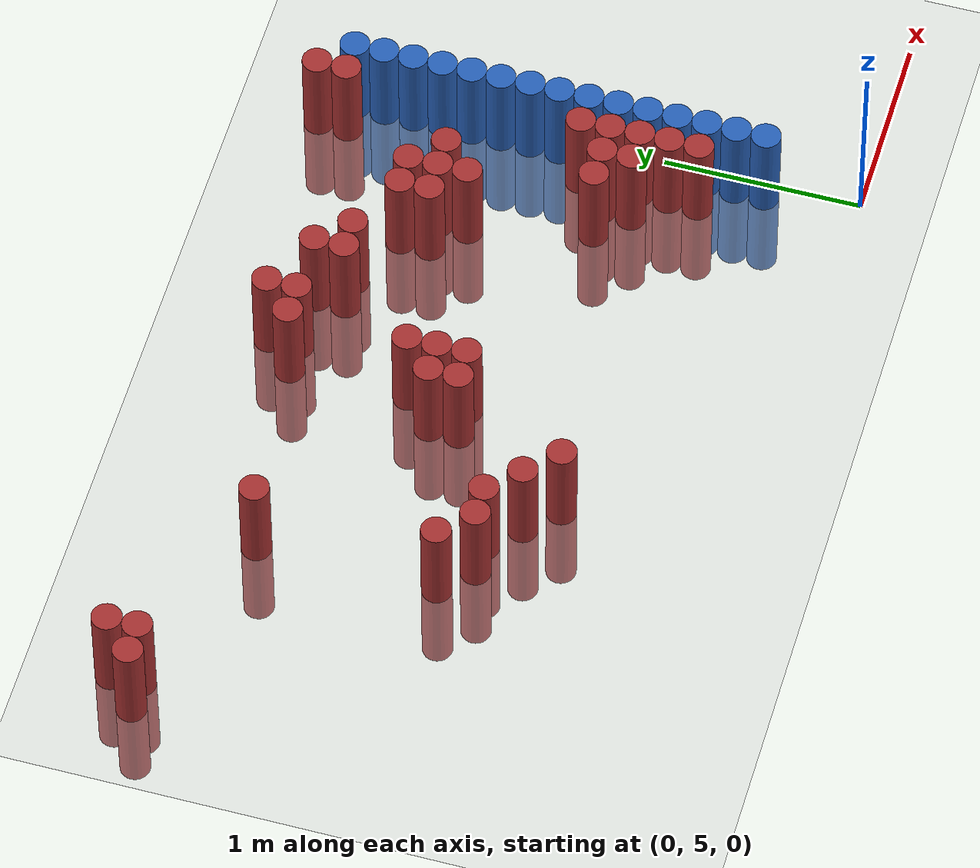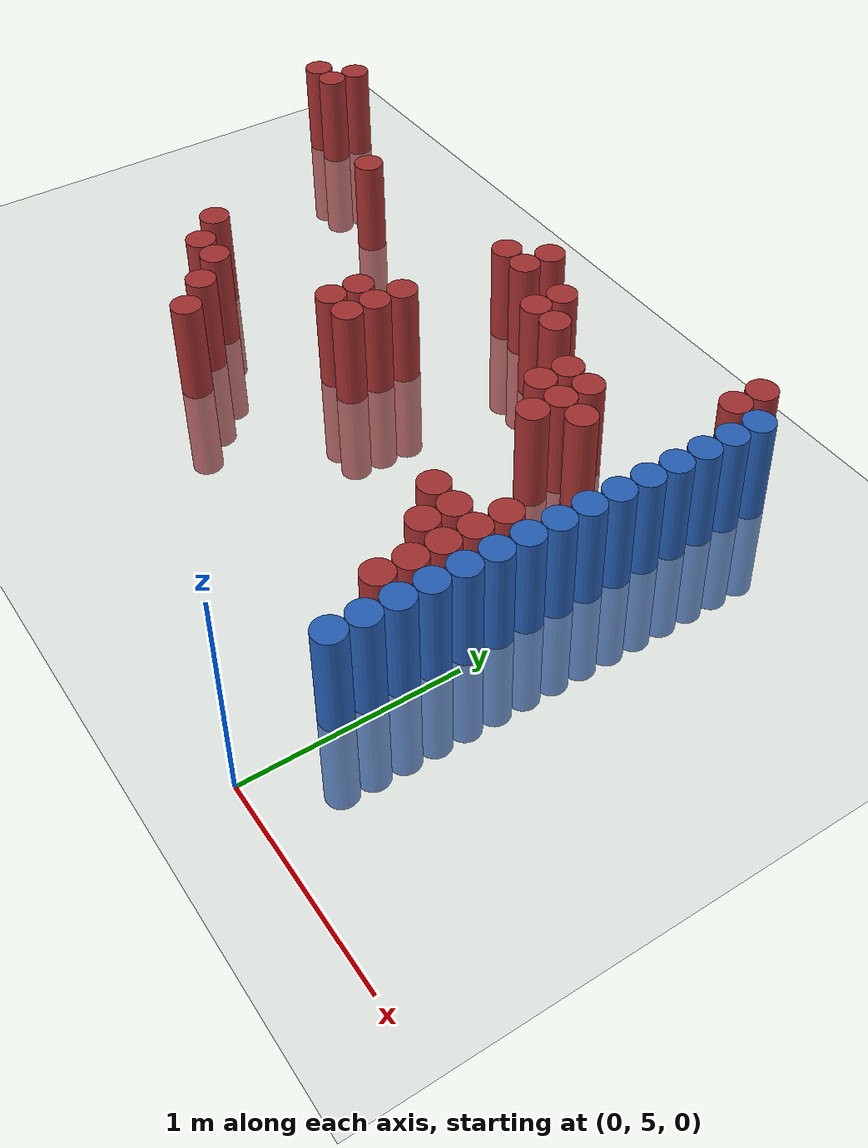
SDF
<sdf version="1.6">
 <world name="default">
  <model name="ground_plane">
   <static>1</static>
   <link name="link">
    <collision name="collision">
     <geometry><plane><normal>0 0 1</normal><size>100 100</size></plane></geometry>
     <surface><friction><ode><mu>100</mu><mu2>50</mu2></ode></friction></surface>
    </collision>
    <visual name="visual">
     <cast_shadows>0</cast_shadows>
     <geometry><plane><normal>0 0 1</normal><size>100 100</size></plane></geometry>
     <material>
      <script><uri>file://media/materials/scripts/gazebo.material</uri><name>Gazebo/Grey</name></script>
     </material>
    </visual>
   </link>
  </model>
  <model name="unit_cylinder_152">
   <static>1</static>
   <pose>-3.825000 7.575000 0.000000 0.000000 0.000000 0.000000</pose>
   <link name="link">
    <inertial>
     <mass>1</mass>
     <inertia><ixx>0.145833</ixx><ixy>0</ixy><ixz>0</ixz><iyy>0.145833</iyy><iyz>0</iyz><izz>0.125</izz></inertia>
    </inertial>
    <collision name="collision">
     <geometry><cylinder><radius>0.075000</radius><length>1</length></cylinder></geometry>
    </collision>
    <visual name="visual">
     <geometry><cylinder><radius>0.075000</radius><length>1</length></cylinder></geometry>
     <material>
      <ambient>0.648000 0.192000 0.192000 1</ambient>
      <diffuse>0.648000 0.192000 0.192000 1</diffuse>
     </material>
     <material>
      <script><name>Gazebo/Grey</name><uri>file://media/materials/scripts/gazebo.material</uri></script>
     </material>
    </visual>
   </link>
  </model>
  <model name="unit_cylinder_153">
   <static>1</static>
   <pose>-3.675000 7.575000 0.000000 0.000000 0.000000 0.000000</pose>
   <link name="link">
    <inertial>
     <mass>1</mass>
     <inertia><ixx>0.145833</ixx><ixy>0</ixy><ixz>0</ixz><iyy>0.145833</iyy><iyz>0</iyz><izz>0.125</izz></inertia>
    </inertial>
    <collision name="collision">
     <geometry><cylinder><radius>0.075000</radius><length>1</length></cylinder></geometry>
    </collision>
    <visual name="visual">
     <geometry><cylinder><radius>0.075000</radius><length>1</length></cylinder></geometry>
     <material>
      <ambient>0.648000 0.192000 0.192000 1</ambient>
      <diffuse>0.648000 0.192000 0.192000 1</diffuse>
     </material>
     <material>
      <script><name>Gazebo/Grey</name><uri>file://media/materials/scripts/gazebo.material</uri></script>
     </material>
    </visual>
   </link>
  </model>
  <model name="unit_cylinder_154">
   <static>1</static>
   <pose>-3.675000 7.725000 0.000000 0.000000 0.000000 0.000000</pose>
   <link name="link">
    <inertial>
     <mass>1</mass>
     <inertia><ixx>0.145833</ixx><ixy>0</ixy><ixz>0</ixz><iyy>0.145833</iyy><iyz>0</iyz><izz>0.125</izz></inertia>
    </inertial>
    <collision name="collision">
     <geometry><cylinder><radius>0.075000</radius><length>1</length></cylinder></geometry>
    </collision>
    <visual name="visual">
     <geometry><cylinder><radius>0.075000</radius><length>1</length></cylinder></geometry>
     <material>
      <ambient>0.648000 0.192000 0.192000 1</ambient>
      <diffuse>0.648000 0.192000 0.192000 1</diffuse>
     </material>
     <material>
      <script><name>Gazebo/Grey</name><uri>file://media/materials/scripts/gazebo.material</uri></script>
     </material>
    </visual>
   </link>
  </model>
  <model name="unit_cylinder_157">
   <static>1</static>
   <pose>-2.775000 6.375000 0.000000 0.000000 0.000000 0.000000</pose>
   <link name="link">
    <inertial>
     <mass>1</mass>
     <inertia><ixx>0.145833</ixx><ixy>0</ixy><ixz>0</ixz><iyy>0.145833</iyy><iyz>0</iyz><izz>0.125</izz></inertia>
    </inertial>
    <collision name="collision">
     <geometry><cylinder><radius>0.075000</radius><length>1</length></cylinder></geometry>
    </collision>
    <visual name="visual">
     <geometry><cylinder><radius>0.075000</radius><length>1</length></cylinder></geometry>
     <material>
      <ambient>0.648000 0.192000 0.192000 1</ambient>
      <diffuse>0.648000 0.192000 0.192000 1</diffuse>
     </material>
     <material>
      <script><name>Gazebo/Grey</name><uri>file://media/materials/scripts/gazebo.material</uri></script>
     </material>
    </visual>
   </link>
  </model>
  <model name="unit_cylinder_158">
   <static>1</static>
   <pose>-2.775000 7.275000 0.000000 0.000000 0.000000 0.000000</pose>
   <link name="link">
    <inertial>
     <mass>1</mass>
     <inertia><ixx>0.145833</ixx><ixy>0</ixy><ixz>0</ixz><iyy>0.145833</iyy><iyz>0</iyz><izz>0.125</izz></inertia>
    </inertial>
    <collision name="collision">
     <geometry><cylinder><radius>0.075000</radius><length>1</length></cylinder></geometry>
    </collision>
    <visual name="visual">
     <geometry><cylinder><radius>0.075000</radius><length>1</length></cylinder></geometry>
     <material>
      <ambient>0.648000 0.192000 0.192000 1</ambient>
      <diffuse>0.648000 0.192000 0.192000 1</diffuse>
     </material>
     <material>
      <script><name>Gazebo/Grey</name><uri>file://media/materials/scripts/gazebo.material</uri></script>
     </material>
    </visual>
   </link>
  </model>
  <model name="unit_cylinder_160">
   <static>1</static>
   <pose>-2.625000 6.225000 0.000000 0.000000 0.000000 0.000000</pose>
   <link name="link">
    <inertial>
     <mass>1</mass>
     <inertia><ixx>0.145833</ixx><ixy>0</ixy><ixz>0</ixz><iyy>0.145833</iyy><iyz>0</iyz><izz>0.125</izz></inertia>
    </inertial>
    <collision name="collision">
     <geometry><cylinder><radius>0.075000</radius><length>1</length></cylinder></geometry>
    </collision>
    <visual name="visual">
     <geometry><cylinder><radius>0.075000</radius><length>1</length></cylinder></geometry>
     <material>
      <ambient>0.648000 0.192000 0.192000 1</ambient>
      <diffuse>0.648000 0.192000 0.192000 1</diffuse>
     </material>
     <material>
      <script><name>Gazebo/Grey</name><uri>file://media/materials/scripts/gazebo.material</uri></script>
     </material>
    </visual>
   </link>
  </model>
  <model name="unit_cylinder_161">
   <static>1</static>
   <pose>-2.475000 6.225000 0.000000 0.000000 0.000000 0.000000</pose>
   <link name="link">
    <inertial>
     <mass>1</mass>
     <inertia><ixx>0.145833</ixx><ixy>0</ixy><ixz>0</ixz><iyy>0.145833</iyy><iyz>0</iyz><izz>0.125</izz></inertia>
    </inertial>
    <collision name="collision">
     <geometry><cylinder><radius>0.075000</radius><length>1</length></cylinder></geometry>
    </collision>
    <visual name="visual">
     <geometry><cylinder><radius>0.075000</radius><length>1</length></cylinder></geometry>
     <material>
      <ambient>0.648000 0.192000 0.192000 1</ambient>
      <diffuse>0.648000 0.192000 0.192000 1</diffuse>
     </material>
     <material>
      <script><name>Gazebo/Grey</name><uri>file://media/materials/scripts/gazebo.material</uri></script>
     </material>
    </visual>
   </link>
  </model>
  <model name="unit_cylinder_162">
   <static>1</static>
   <pose>-2.325000 6.075000 0.000000 0.000000 0.000000 0.000000</pose>
   <link name="link">
    <inertial>
     <mass>1</mass>
     <inertia><ixx>0.145833</ixx><ixy>0</ixy><ixz>0</ixz><iyy>0.145833</iyy><iyz>0</iyz><izz>0.125</izz></inertia>
    </inertial>
    <collision name="collision">
     <geometry><cylinder><radius>0.075000</radius><length>1</length></cylinder></geometry>
    </collision>
    <visual name="visual">
     <geometry><cylinder><radius>0.075000</radius><length>1</length></cylinder></geometry>
     <material>
      <ambient>0.648000 0.192000 0.192000 1</ambient>
      <diffuse>0.648000 0.192000 0.192000 1</diffuse>
     </material>
     <material>
      <script><name>Gazebo/Grey</name><uri>file://media/materials/scripts/gazebo.material</uri></script>
     </material>
    </visual>
   </link>
  </model>
  <model name="unit_cylinder_165">
   <static>1</static>
   <pose>-2.175000 5.925000 0.000000 0.000000 0.000000 0.000000</pose>
   <link name="link">
    <inertial>
     <mass>1</mass>
     <inertia><ixx>0.145833</ixx><ixy>0</ixy><ixz>0</ixz><iyy>0.145833</iyy><iyz>0</iyz><izz>0.125</izz></inertia>
    </inertial>
    <collision name="collision">
     <geometry><cylinder><radius>0.075000</radius><length>1</length></cylinder></geometry>
    </collision>
    <visual name="visual">
     <geometry><cylinder><radius>0.075000</radius><length>1</length></cylinder></geometry>
     <material>
      <ambient>0.648000 0.192000 0.192000 1</ambient>
      <diffuse>0.648000 0.192000 0.192000 1</diffuse>
     </material>
     <material>
      <script><name>Gazebo/Grey</name><uri>file://media/materials/scripts/gazebo.material</uri></script>
     </material>
    </visual>
   </link>
  </model>
  <model name="unit_cylinder_170">
   <static>1</static>
   <pose>-1.875000 6.525000 0.000000 0.000000 0.000000 0.000000</pose>
   <link name="link">
    <inertial>
     <mass>1</mass>
     <inertia><ixx>0.145833</ixx><ixy>0</ixy><ixz>0</ixz><iyy>0.145833</iyy><iyz>0</iyz><izz>0.125</izz></inertia>
    </inertial>
    <collision name="collision">
     <geometry><cylinder><radius>0.075000</radius><length>1</length></cylinder></geometry>
    </collision>
    <visual name="visual">
     <geometry><cylinder><radius>0.075000</radius><length>1</length></cylinder></geometry>
     <material>
      <ambient>0.648000 0.192000 0.192000 1</ambient>
      <diffuse>0.648000 0.192000 0.192000 1</diffuse>
     </material>
     <material>
      <script><name>Gazebo/Grey</name><uri>file://media/materials/scripts/gazebo.material</uri></script>
     </material>
    </visual>
   </link>
  </model>
  <model name="unit_cylinder_171">
   <static>1</static>
   <pose>-1.875000 6.675000 0.000000 0.000000 0.000000 0.000000</pose>
   <link name="link">
    <inertial>
     <mass>1</mass>
     <inertia><ixx>0.145833</ixx><ixy>0</ixy><ixz>0</ixz><iyy>0.145833</iyy><iyz>0</iyz><izz>0.125</izz></inertia>
    </inertial>
    <collision name="collision">
     <geometry><cylinder><radius>0.075000</radius><length>1</length></cylinder></geometry>
    </collision>
    <visual name="visual">
     <geometry><cylinder><radius>0.075000</radius><length>1</length></cylinder></geometry>
     <material>
      <ambient>0.648000 0.192000 0.192000 1</ambient>
      <diffuse>0.648000 0.192000 0.192000 1</diffuse>
     </material>
     <material>
      <script><name>Gazebo/Grey</name><uri>file://media/materials/scripts/gazebo.material</uri></script>
     </material>
    </visual>
   </link>
  </model>
  <model name="unit_cylinder_172">
   <static>1</static>
   <pose>-1.725000 6.525000 0.000000 0.000000 0.000000 0.000000</pose>
   <link name="link">
    <inertial>
     <mass>1</mass>
     <inertia><ixx>0.145833</ixx><ixy>0</ixy><ixz>0</ixz><iyy>0.145833</iyy><iyz>0</iyz><izz>0.125</izz></inertia>
    </inertial>
    <collision name="collision">
     <geometry><cylinder><radius>0.075000</radius><length>1</length></cylinder></geometry>
    </collision>
    <visual name="visual">
     <geometry><cylinder><radius>0.075000</radius><length>1</length></cylinder></geometry>
     <material>
      <ambient>0.648000 0.192000 0.192000 1</ambient>
      <diffuse>0.648000 0.192000 0.192000 1</diffuse>
     </material>
     <material>
      <script><name>Gazebo/Grey</name><uri>file://media/materials/scripts/gazebo.material</uri></script>
     </material>
    </visual>
   </link>
  </model>
  <model name="unit_cylinder_173">
   <static>1</static>
   <pose>-1.725000 6.675000 0.000000 0.000000 0.000000 0.000000</pose>
   <link name="link">
    <inertial>
     <mass>1</mass>
     <inertia><ixx>0.145833</ixx><ixy>0</ixy><ixz>0</ixz><iyy>0.145833</iyy><iyz>0</iyz><izz>0.125</izz></inertia>
    </inertial>
    <collision name="collision">
     <geometry><cylinder><radius>0.075000</radius><length>1</length></cylinder></geometry>
    </collision>
    <visual name="visual">
     <geometry><cylinder><radius>0.075000</radius><length>1</length></cylinder></geometry>
     <material>
      <ambient>0.648000 0.192000 0.192000 1</ambient>
      <diffuse>0.648000 0.192000 0.192000 1</diffuse>
     </material>
     <material>
      <script><name>Gazebo/Grey</name><uri>file://media/materials/scripts/gazebo.material</uri></script>
     </material>
    </visual>
   </link>
  </model>
  <model name="unit_cylinder_174">
   <static>1</static>
   <pose>-1.725000 6.825000 0.000000 0.000000 0.000000 0.000000</pose>
   <link name="link">
    <inertial>
     <mass>1</mass>
     <inertia><ixx>0.145833</ixx><ixy>0</ixy><ixz>0</ixz><iyy>0.145833</iyy><iyz>0</iyz><izz>0.125</izz></inertia>
    </inertial>
    <collision name="collision">
     <geometry><cylinder><radius>0.075000</radius><length>1</length></cylinder></geometry>
    </collision>
    <visual name="visual">
     <geometry><cylinder><radius>0.075000</radius><length>1</length></cylinder></geometry>
     <material>
      <ambient>0.648000 0.192000 0.192000 1</ambient>
      <diffuse>0.648000 0.192000 0.192000 1</diffuse>
     </material>
     <material>
      <script><name>Gazebo/Grey</name><uri>file://media/materials/scripts/gazebo.material</uri></script>
     </material>
    </visual>
   </link>
  </model>
  <model name="unit_cylinder_175">
   <static>1</static>
   <pose>-1.725000 7.425000 0.000000 0.000000 0.000000 0.000000</pose>
   <link name="link">
    <inertial>
     <mass>1</mass>
     <inertia><ixx>0.145833</ixx><ixy>0</ixy><ixz>0</ixz><iyy>0.145833</iyy><iyz>0</iyz><izz>0.125</izz></inertia>
    </inertial>
    <collision name="collision">
     <geometry><cylinder><radius>0.075000</radius><length>1</length></cylinder></geometry>
    </collision>
    <visual name="visual">
     <geometry><cylinder><radius>0.075000</radius><length>1</length></cylinder></geometry>
     <material>
      <ambient>0.648000 0.192000 0.192000 1</ambient>
      <diffuse>0.648000 0.192000 0.192000 1</diffuse>
     </material>
     <material>
      <script><name>Gazebo/Grey</name><uri>file://media/materials/scripts/gazebo.material</uri></script>
     </material>
    </visual>
   </link>
  </model>
  <model name="unit_cylinder_176">
   <static>1</static>
   <pose>-1.575000 7.425000 0.000000 0.000000 0.000000 0.000000</pose>
   <link name="link">
    <inertial>
     <mass>1</mass>
     <inertia><ixx>0.145833</ixx><ixy>0</ixy><ixz>0</ixz><iyy>0.145833</iyy><iyz>0</iyz><izz>0.125</izz></inertia>
    </inertial>
    <collision name="collision">
     <geometry><cylinder><radius>0.075000</radius><length>1</length></cylinder></geometry>
    </collision>
    <visual name="visual">
     <geometry><cylinder><radius>0.075000</radius><length>1</length></cylinder></geometry>
     <material>
      <ambient>0.648000 0.192000 0.192000 1</ambient>
      <diffuse>0.648000 0.192000 0.192000 1</diffuse>
     </material>
     <material>
      <script><name>Gazebo/Grey</name><uri>file://media/materials/scripts/gazebo.material</uri></script>
     </material>
    </visual>
   </link>
  </model>
  <model name="unit_cylinder_177">
   <static>1</static>
   <pose>-1.575000 7.575000 0.000000 0.000000 0.000000 0.000000</pose>
   <link name="link">
    <inertial>
     <mass>1</mass>
     <inertia><ixx>0.145833</ixx><ixy>0</ixy><ixz>0</ixz><iyy>0.145833</iyy><iyz>0</iyz><izz>0.125</izz></inertia>
    </inertial>
    <collision name="collision">
     <geometry><cylinder><radius>0.075000</radius><length>1</length></cylinder></geometry>
    </collision>
    <visual name="visual">
     <geometry><cylinder><radius>0.075000</radius><length>1</length></cylinder></geometry>
     <material>
      <ambient>0.648000 0.192000 0.192000 1</ambient>
      <diffuse>0.648000 0.192000 0.192000 1</diffuse>
     </material>
     <material>
      <script><name>Gazebo/Grey</name><uri>file://media/materials/scripts/gazebo.material</uri></script>
     </material>
    </visual>
   </link>
  </model>
  <model name="unit_cylinder_179">
   <static>1</static>
   <pose>-1.275000 7.275000 0.000000 0.000000 0.000000 0.000000</pose>
   <link name="link">
    <inertial>
     <mass>1</mass>
     <inertia><ixx>0.145833</ixx><ixy>0</ixy><ixz>0</ixz><iyy>0.145833</iyy><iyz>0</iyz><izz>0.125</izz></inertia>
    </inertial>
    <collision name="collision">
     <geometry><cylinder><radius>0.075000</radius><length>1</length></cylinder></geometry>
    </collision>
    <visual name="visual">
     <geometry><cylinder><radius>0.075000</radius><length>1</length></cylinder></geometry>
     <material>
      <ambient>0.648000 0.192000 0.192000 1</ambient>
      <diffuse>0.648000 0.192000 0.192000 1</diffuse>
     </material>
     <material>
      <script><name>Gazebo/Grey</name><uri>file://media/materials/scripts/gazebo.material</uri></script>
     </material>
    </visual>
   </link>
  </model>
  <model name="unit_cylinder_180">
   <static>1</static>
   <pose>-1.275000 7.425000 0.000000 0.000000 0.000000 0.000000</pose>
   <link name="link">
    <inertial>
     <mass>1</mass>
     <inertia><ixx>0.145833</ixx><ixy>0</ixy><ixz>0</ixz><iyy>0.145833</iyy><iyz>0</iyz><izz>0.125</izz></inertia>
    </inertial>
    <collision name="collision">
     <geometry><cylinder><radius>0.075000</radius><length>1</length></cylinder></geometry>
    </collision>
    <visual name="visual">
     <geometry><cylinder><radius>0.075000</radius><length>1</length></cylinder></geometry>
     <material>
      <ambient>0.648000 0.192000 0.192000 1</ambient>
      <diffuse>0.648000 0.192000 0.192000 1</diffuse>
     </material>
     <material>
      <script><name>Gazebo/Grey</name><uri>file://media/materials/scripts/gazebo.material</uri></script>
     </material>
    </visual>
   </link>
  </model>
  <model name="unit_cylinder_184">
   <static>1</static>
   <pose>-1.125000 7.275000 0.000000 0.000000 0.000000 0.000000</pose>
   <link name="link">
    <inertial>
     <mass>1</mass>
     <inertia><ixx>0.145833</ixx><ixy>0</ixy><ixz>0</ixz><iyy>0.145833</iyy><iyz>0</iyz><izz>0.125</izz></inertia>
    </inertial>
    <collision name="collision">
     <geometry><cylinder><radius>0.075000</radius><length>1</length></cylinder></geometry>
    </collision>
    <visual name="visual">
     <geometry><cylinder><radius>0.075000</radius><length>1</length></cylinder></geometry>
     <material>
      <ambient>0.648000 0.192000 0.192000 1</ambient>
      <diffuse>0.648000 0.192000 0.192000 1</diffuse>
     </material>
     <material>
      <script><name>Gazebo/Grey</name><uri>file://media/materials/scripts/gazebo.material</uri></script>
     </material>
    </visual>
   </link>
  </model>
  <model name="unit_cylinder_189">
   <static>1</static>
   <pose>-0.825000 6.975000 0.000000 0.000000 0.000000 0.000000</pose>
   <link name="link">
    <inertial>
     <mass>1</mass>
     <inertia><ixx>0.145833</ixx><ixy>0</ixy><ixz>0</ixz><iyy>0.145833</iyy><iyz>0</iyz><izz>0.125</izz></inertia>
    </inertial>
    <collision name="collision">
     <geometry><cylinder><radius>0.075000</radius><length>1</length></cylinder></geometry>
    </collision>
    <visual name="visual">
     <geometry><cylinder><radius>0.075000</radius><length>1</length></cylinder></geometry>
     <material>
      <ambient>0.648000 0.192000 0.192000 1</ambient>
      <diffuse>0.648000 0.192000 0.192000 1</diffuse>
     </material>
     <material>
      <script><name>Gazebo/Grey</name><uri>file://media/materials/scripts/gazebo.material</uri></script>
     </material>
    </visual>
   </link>
  </model>
  <model name="unit_cylinder_190">
   <static>1</static>
   <pose>-0.825000 7.125000 0.000000 0.000000 0.000000 0.000000</pose>
   <link name="link">
    <inertial>
     <mass>1</mass>
     <inertia><ixx>0.145833</ixx><ixy>0</ixy><ixz>0</ixz><iyy>0.145833</iyy><iyz>0</iyz><izz>0.125</izz></inertia>
    </inertial>
    <collision name="collision">
     <geometry><cylinder><radius>0.075000</radius><length>1</length></cylinder></geometry>
    </collision>
    <visual name="visual">
     <geometry><cylinder><radius>0.075000</radius><length>1</length></cylinder></geometry>
     <material>
      <ambient>0.648000 0.192000 0.192000 1</ambient>
      <diffuse>0.648000 0.192000 0.192000 1</diffuse>
     </material>
     <material>
      <script><name>Gazebo/Grey</name><uri>file://media/materials/scripts/gazebo.material</uri></script>
     </material>
    </visual>
   </link>
  </model>
  <model name="unit_cylinder_191">
   <static>1</static>
   <pose>-0.675000 6.825000 0.000000 0.000000 0.000000 0.000000</pose>
   <link name="link">
    <inertial>
     <mass>1</mass>
     <inertia><ixx>0.145833</ixx><ixy>0</ixy><ixz>0</ixz><iyy>0.145833</iyy><iyz>0</iyz><izz>0.125</izz></inertia>
    </inertial>
    <collision name="collision">
     <geometry><cylinder><radius>0.075000</radius><length>1</length></cylinder></geometry>
    </collision>
    <visual name="visual">
     <geometry><cylinder><radius>0.075000</radius><length>1</length></cylinder></geometry>
     <material>
      <ambient>0.648000 0.192000 0.192000 1</ambient>
      <diffuse>0.648000 0.192000 0.192000 1</diffuse>
     </material>
     <material>
      <script><name>Gazebo/Grey</name><uri>file://media/materials/scripts/gazebo.material</uri></script>
     </material>
    </visual>
   </link>
  </model>
  <model name="unit_cylinder_192">
   <static>1</static>
   <pose>-0.675000 6.975000 0.000000 0.000000 0.000000 0.000000</pose>
   <link name="link">
    <inertial>
     <mass>1</mass>
     <inertia><ixx>0.145833</ixx><ixy>0</ixy><ixz>0</ixz><iyy>0.145833</iyy><iyz>0</iyz><izz>0.125</izz></inertia>
    </inertial>
    <collision name="collision">
     <geometry><cylinder><radius>0.075000</radius><length>1</length></cylinder></geometry>
    </collision>
    <visual name="visual">
     <geometry><cylinder><radius>0.075000</radius><length>1</length></cylinder></geometry>
     <material>
      <ambient>0.648000 0.192000 0.192000 1</ambient>
      <diffuse>0.648000 0.192000 0.192000 1</diffuse>
     </material>
     <material>
      <script><name>Gazebo/Grey</name><uri>file://media/materials/scripts/gazebo.material</uri></script>
     </material>
    </visual>
   </link>
  </model>
  <model name="unit_cylinder_193">
   <static>1</static>
   <pose>-0.675000 7.125000 0.000000 0.000000 0.000000 0.000000</pose>
   <link name="link">
    <inertial>
     <mass>1</mass>
     <inertia><ixx>0.145833</ixx><ixy>0</ixy><ixz>0</ixz><iyy>0.145833</iyy><iyz>0</iyz><izz>0.125</izz></inertia>
    </inertial>
    <collision name="collision">
     <geometry><cylinder><radius>0.075000</radius><length>1</length></cylinder></geometry>
    </collision>
    <visual name="visual">
     <geometry><cylinder><radius>0.075000</radius><length>1</length></cylinder></geometry>
     <material>
      <ambient>0.648000 0.192000 0.192000 1</ambient>
      <diffuse>0.648000 0.192000 0.192000 1</diffuse>
     </material>
     <material>
      <script><name>Gazebo/Grey</name><uri>file://media/materials/scripts/gazebo.material</uri></script>
     </material>
    </visual>
   </link>
  </model>
  <model name="unit_cylinder_200">
   <static>1</static>
   <pose>-0.525000 6.225000 0.000000 0.000000 0.000000 0.000000</pose>
   <link name="link">
    <inertial>
     <mass>1</mass>
     <inertia><ixx>0.145833</ixx><ixy>0</ixy><ixz>0</ixz><iyy>0.145833</iyy><iyz>0</iyz><izz>0.125</izz></inertia>
    </inertial>
    <collision name="collision">
     <geometry><cylinder><radius>0.075000</radius><length>1</length></cylinder></geometry>
    </collision>
    <visual name="visual">
     <geometry><cylinder><radius>0.075000</radius><length>1</length></cylinder></geometry>
     <material>
      <ambient>0.648000 0.192000 0.192000 1</ambient>
      <diffuse>0.648000 0.192000 0.192000 1</diffuse>
     </material>
     <material>
      <script><name>Gazebo/Grey</name><uri>file://media/materials/scripts/gazebo.material</uri></script>
     </material>
    </visual>
   </link>
  </model>
  <model name="unit_cylinder_201">
   <static>1</static>
   <pose>-0.525000 6.975000 0.000000 0.000000 0.000000 0.000000</pose>
   <link name="link">
    <inertial>
     <mass>1</mass>
     <inertia><ixx>0.145833</ixx><ixy>0</ixy><ixz>0</ixz><iyy>0.145833</iyy><iyz>0</iyz><izz>0.125</izz></inertia>
    </inertial>
    <collision name="collision">
     <geometry><cylinder><radius>0.075000</radius><length>1</length></cylinder></geometry>
    </collision>
    <visual name="visual">
     <geometry><cylinder><radius>0.075000</radius><length>1</length></cylinder></geometry>
     <material>
      <ambient>0.648000 0.192000 0.192000 1</ambient>
      <diffuse>0.648000 0.192000 0.192000 1</diffuse>
     </material>
     <material>
      <script><name>Gazebo/Grey</name><uri>file://media/materials/scripts/gazebo.material</uri></script>
     </material>
    </visual>
   </link>
  </model>
  <model name="unit_cylinder_206">
   <static>1</static>
   <pose>-0.375000 6.075000 0.000000 0.000000 0.000000 0.000000</pose>
   <link name="link">
    <inertial>
     <mass>1</mass>
     <inertia><ixx>0.145833</ixx><ixy>0</ixy><ixz>0</ixz><iyy>0.145833</iyy><iyz>0</iyz><izz>0.125</izz></inertia>
    </inertial>
    <collision name="collision">
     <geometry><cylinder><radius>0.075000</radius><length>1</length></cylinder></geometry>
    </collision>
    <visual name="visual">
     <geometry><cylinder><radius>0.075000</radius><length>1</length></cylinder></geometry>
     <material>
      <ambient>0.648000 0.192000 0.192000 1</ambient>
      <diffuse>0.648000 0.192000 0.192000 1</diffuse>
     </material>
     <material>
      <script><name>Gazebo/Grey</name><uri>file://media/materials/scripts/gazebo.material</uri></script>
     </material>
    </visual>
   </link>
  </model>
  <model name="unit_cylinder_207">
   <static>1</static>
   <pose>-0.375000 6.225000 0.000000 0.000000 0.000000 0.000000</pose>
   <link name="link">
    <inertial>
     <mass>1</mass>
     <inertia><ixx>0.145833</ixx><ixy>0</ixy><ixz>0</ixz><iyy>0.145833</iyy><iyz>0</iyz><izz>0.125</izz></inertia>
    </inertial>
    <collision name="collision">
     <geometry><cylinder><radius>0.075000</radius><length>1</length></cylinder></geometry>
    </collision>
    <visual name="visual">
     <geometry><cylinder><radius>0.075000</radius><length>1</length></cylinder></geometry>
     <material>
      <ambient>0.648000 0.192000 0.192000 1</ambient>
      <diffuse>0.648000 0.192000 0.192000 1</diffuse>
     </material>
     <material>
      <script><name>Gazebo/Grey</name><uri>file://media/materials/scripts/gazebo.material</uri></script>
     </material>
    </visual>
   </link>
  </model>
  <model name="unit_cylinder_212">
   <static>1</static>
   <pose>-0.225000 5.775000 0.000000 0.000000 0.000000 0.000000</pose>
   <link name="link">
    <inertial>
     <mass>1</mass>
     <inertia><ixx>0.145833</ixx><ixy>0</ixy><ixz>0</ixz><iyy>0.145833</iyy><iyz>0</iyz><izz>0.125</izz></inertia>
    </inertial>
    <collision name="collision">
     <geometry><cylinder><radius>0.075000</radius><length>1</length></cylinder></geometry>
    </collision>
    <visual name="visual">
     <geometry><cylinder><radius>0.075000</radius><length>1</length></cylinder></geometry>
     <material>
      <ambient>0.648000 0.192000 0.192000 1</ambient>
      <diffuse>0.648000 0.192000 0.192000 1</diffuse>
     </material>
     <material>
      <script><name>Gazebo/Grey</name><uri>file://media/materials/scripts/gazebo.material</uri></script>
     </material>
    </visual>
   </link>
  </model>
  <model name="unit_cylinder_213">
   <static>1</static>
   <pose>-0.225000 5.925000 0.000000 0.000000 0.000000 0.000000</pose>
   <link name="link">
    <inertial>
     <mass>1</mass>
     <inertia><ixx>0.145833</ixx><ixy>0</ixy><ixz>0</ixz><iyy>0.145833</iyy><iyz>0</iyz><izz>0.125</izz></inertia>
    </inertial>
    <collision name="collision">
     <geometry><cylinder><radius>0.075000</radius><length>1</length></cylinder></geometry>
    </collision>
    <visual name="visual">
     <geometry><cylinder><radius>0.075000</radius><length>1</length></cylinder></geometry>
     <material>
      <ambient>0.648000 0.192000 0.192000 1</ambient>
      <diffuse>0.648000 0.192000 0.192000 1</diffuse>
     </material>
     <material>
      <script><name>Gazebo/Grey</name><uri>file://media/materials/scripts/gazebo.material</uri></script>
     </material>
    </visual>
   </link>
  </model>
  <model name="unit_cylinder_214">
   <static>1</static>
   <pose>-0.225000 6.075000 0.000000 0.000000 0.000000 0.000000</pose>
   <link name="link">
    <inertial>
     <mass>1</mass>
     <inertia><ixx>0.145833</ixx><ixy>0</ixy><ixz>0</ixz><iyy>0.145833</iyy><iyz>0</iyz><izz>0.125</izz></inertia>
    </inertial>
    <collision name="collision">
     <geometry><cylinder><radius>0.075000</radius><length>1</length></cylinder></geometry>
    </collision>
    <visual name="visual">
     <geometry><cylinder><radius>0.075000</radius><length>1</length></cylinder></geometry>
     <material>
      <ambient>0.648000 0.192000 0.192000 1</ambient>
      <diffuse>0.648000 0.192000 0.192000 1</diffuse>
     </material>
     <material>
      <script><name>Gazebo/Grey</name><uri>file://media/materials/scripts/gazebo.material</uri></script>
     </material>
    </visual>
   </link>
  </model>
  <model name="unit_cylinder_215">
   <static>1</static>
   <pose>-0.225000 6.225000 0.000000 0.000000 0.000000 0.000000</pose>
   <link name="link">
    <inertial>
     <mass>1</mass>
     <inertia><ixx>0.145833</ixx><ixy>0</ixy><ixz>0</ixz><iyy>0.145833</iyy><iyz>0</iyz><izz>0.125</izz></inertia>
    </inertial>
    <collision name="collision">
     <geometry><cylinder><radius>0.075000</radius><length>1</length></cylinder></geometry>
    </collision>
    <visual name="visual">
     <geometry><cylinder><radius>0.075000</radius><length>1</length></cylinder></geometry>
     <material>
      <ambient>0.648000 0.192000 0.192000 1</ambient>
      <diffuse>0.648000 0.192000 0.192000 1</diffuse>
     </material>
     <material>
      <script><name>Gazebo/Grey</name><uri>file://media/materials/scripts/gazebo.material</uri></script>
     </material>
    </visual>
   </link>
  </model>
  <model name="unit_cylinder_216">
   <static>1</static>
   <pose>-0.225000 6.375000 0.000000 0.000000 0.000000 0.000000</pose>
   <link name="link">
    <inertial>
     <mass>1</mass>
     <inertia><ixx>0.145833</ixx><ixy>0</ixy><ixz>0</ixz><iyy>0.145833</iyy><iyz>0</iyz><izz>0.125</izz></inertia>
    </inertial>
    <collision name="collision">
     <geometry><cylinder><radius>0.075000</radius><length>1</length></cylinder></geometry>
    </collision>
    <visual name="visual">
     <geometry><cylinder><radius>0.075000</radius><length>1</length></cylinder></geometry>
     <material>
      <ambient>0.648000 0.192000 0.192000 1</ambient>
      <diffuse>0.648000 0.192000 0.192000 1</diffuse>
     </material>
     <material>
      <script><name>Gazebo/Grey</name><uri>file://media/materials/scripts/gazebo.material</uri></script>
     </material>
    </visual>
   </link>
  </model>
  <model name="unit_cylinder_217">
   <static>1</static>
   <pose>-0.225000 7.575000 0.000000 0.000000 0.000000 0.000000</pose>
   <link name="link">
    <inertial>
     <mass>1</mass>
     <inertia><ixx>0.145833</ixx><ixy>0</ixy><ixz>0</ixz><iyy>0.145833</iyy><iyz>0</iyz><izz>0.125</izz></inertia>
    </inertial>
    <collision name="collision">
     <geometry><cylinder><radius>0.075000</radius><length>1</length></cylinder></geometry>
    </collision>
    <visual name="visual">
     <geometry><cylinder><radius>0.075000</radius><length>1</length></cylinder></geometry>
     <material>
      <ambient>0.648000 0.192000 0.192000 1</ambient>
      <diffuse>0.648000 0.192000 0.192000 1</diffuse>
     </material>
     <material>
      <script><name>Gazebo/Grey</name><uri>file://media/materials/scripts/gazebo.material</uri></script>
     </material>
    </visual>
   </link>
  </model>
  <model name="unit_cylinder_218">
   <static>1</static>
   <pose>-0.225000 7.725000 0.000000 0.000000 0.000000 0.000000</pose>
   <link name="link">
    <inertial>
     <mass>1</mass>
     <inertia><ixx>0.145833</ixx><ixy>0</ixy><ixz>0</ixz><iyy>0.145833</iyy><iyz>0</iyz><izz>0.125</izz></inertia>
    </inertial>
    <collision name="collision">
     <geometry><cylinder><radius>0.075000</radius><length>1</length></cylinder></geometry>
    </collision>
    <visual name="visual">
     <geometry><cylinder><radius>0.075000</radius><length>1</length></cylinder></geometry>
     <material>
      <ambient>0.648000 0.192000 0.192000 1</ambient>
      <diffuse>0.648000 0.192000 0.192000 1</diffuse>
     </material>
     <material>
      <script><name>Gazebo/Grey</name><uri>file://media/materials/scripts/gazebo.material</uri></script>
     </material>
    </visual>
   </link>
  </model>
  <model name="unit_cylinder_227">
   <static>1</static>
   <pose>-0.075000 5.475000 0.000000 0.000000 0.000000 0.000000</pose>
   <link name="link">
    <inertial>
     <mass>1</mass>
     <inertia><ixx>0.145833</ixx><ixy>0</ixy><ixz>0</ixz><iyy>0.145833</iyy><iyz>0</iyz><izz>0.125</izz></inertia>
    </inertial>
    <collision name="collision">
     <geometry><cylinder><radius>0.075000</radius><length>1</length></cylinder></geometry>
    </collision>
    <visual name="visual">
     <geometry><cylinder><radius>0.075000</radius><length>1</length></cylinder></geometry>
     <material>
      <ambient>0.152000 0.379000 0.720000 1</ambient>
      <diffuse>0.152000 0.379000 0.720000 1</diffuse>
     </material>
     <material>
      <script><name>Gazebo/Grey</name><uri>file://media/materials/scripts/gazebo.material</uri></script>
     </material>
    </visual>
   </link>
  </model>
  <model name="unit_cylinder_228">
   <static>1</static>
   <pose>-0.075000 5.625000 0.000000 0.000000 0.000000 0.000000</pose>
   <link name="link">
    <inertial>
     <mass>1</mass>
     <inertia><ixx>0.145833</ixx><ixy>0</ixy><ixz>0</ixz><iyy>0.145833</iyy><iyz>0</iyz><izz>0.125</izz></inertia>
    </inertial>
    <collision name="collision">
     <geometry><cylinder><radius>0.075000</radius><length>1</length></cylinder></geometry>
    </collision>
    <visual name="visual">
     <geometry><cylinder><radius>0.075000</radius><length>1</length></cylinder></geometry>
     <material>
      <ambient>0.152000 0.379000 0.720000 1</ambient>
      <diffuse>0.152000 0.379000 0.720000 1</diffuse>
     </material>
     <material>
      <script><name>Gazebo/Grey</name><uri>file://media/materials/scripts/gazebo.material</uri></script>
     </material>
    </visual>
   </link>
  </model>
  <model name="unit_cylinder_229">
   <static>1</static>
   <pose>-0.075000 5.775000 0.000000 0.000000 0.000000 0.000000</pose>
   <link name="link">
    <inertial>
     <mass>1</mass>
     <inertia><ixx>0.145833</ixx><ixy>0</ixy><ixz>0</ixz><iyy>0.145833</iyy><iyz>0</iyz><izz>0.125</izz></inertia>
    </inertial>
    <collision name="collision">
     <geometry><cylinder><radius>0.075000</radius><length>1</length></cylinder></geometry>
    </collision>
    <visual name="visual">
     <geometry><cylinder><radius>0.075000</radius><length>1</length></cylinder></geometry>
     <material>
      <ambient>0.152000 0.379000 0.720000 1</ambient>
      <diffuse>0.152000 0.379000 0.720000 1</diffuse>
     </material>
     <material>
      <script><name>Gazebo/Grey</name><uri>file://media/materials/scripts/gazebo.material</uri></script>
     </material>
    </visual>
   </link>
  </model>
  <model name="unit_cylinder_230">
   <static>1</static>
   <pose>-0.075000 5.925000 0.000000 0.000000 0.000000 0.000000</pose>
   <link name="link">
    <inertial>
     <mass>1</mass>
     <inertia><ixx>0.145833</ixx><ixy>0</ixy><ixz>0</ixz><iyy>0.145833</iyy><iyz>0</iyz><izz>0.125</izz></inertia>
    </inertial>
    <collision name="collision">
     <geometry><cylinder><radius>0.075000</radius><length>1</length></cylinder></geometry>
    </collision>
    <visual name="visual">
     <geometry><cylinder><radius>0.075000</radius><length>1</length></cylinder></geometry>
     <material>
      <ambient>0.152000 0.379000 0.720000 1</ambient>
      <diffuse>0.152000 0.379000 0.720000 1</diffuse>
     </material>
     <material>
      <script><name>Gazebo/Grey</name><uri>file://media/materials/scripts/gazebo.material</uri></script>
     </material>
    </visual>
   </link>
  </model>
  <model name="unit_cylinder_231">
   <static>1</static>
   <pose>-0.075000 6.075000 0.000000 0.000000 0.000000 0.000000</pose>
   <link name="link">
    <inertial>
     <mass>1</mass>
     <inertia><ixx>0.145833</ixx><ixy>0</ixy><ixz>0</ixz><iyy>0.145833</iyy><iyz>0</iyz><izz>0.125</izz></inertia>
    </inertial>
    <collision name="collision">
     <geometry><cylinder><radius>0.075000</radius><length>1</length></cylinder></geometry>
    </collision>
    <visual name="visual">
     <geometry><cylinder><radius>0.075000</radius><length>1</length></cylinder></geometry>
     <material>
      <ambient>0.152000 0.379000 0.720000 1</ambient>
      <diffuse>0.152000 0.379000 0.720000 1</diffuse>
     </material>
     <material>
      <script><name>Gazebo/Grey</name><uri>file://media/materials/scripts/gazebo.material</uri></script>
     </material>
    </visual>
   </link>
  </model>
  <model name="unit_cylinder_232">
   <static>1</static>
   <pose>-0.075000 6.225000 0.000000 0.000000 0.000000 0.000000</pose>
   <link name="link">
    <inertial>
     <mass>1</mass>
     <inertia><ixx>0.145833</ixx><ixy>0</ixy><ixz>0</ixz><iyy>0.145833</iyy><iyz>0</iyz><izz>0.125</izz></inertia>
    </inertial>
    <collision name="collision">
     <geometry><cylinder><radius>0.075000</radius><length>1</length></cylinder></geometry>
    </collision>
    <visual name="visual">
     <geometry><cylinder><radius>0.075000</radius><length>1</length></cylinder></geometry>
     <material>
      <ambient>0.152000 0.379000 0.720000 1</ambient>
      <diffuse>0.152000 0.379000 0.720000 1</diffuse>
     </material>
     <material>
      <script><name>Gazebo/Grey</name><uri>file://media/materials/scripts/gazebo.material</uri></script>
     </material>
    </visual>
   </link>
  </model>
  <model name="unit_cylinder_233">
   <static>1</static>
   <pose>-0.075000 6.375000 0.000000 0.000000 0.000000 0.000000</pose>
   <link name="link">
    <inertial>
     <mass>1</mass>
     <inertia><ixx>0.145833</ixx><ixy>0</ixy><ixz>0</ixz><iyy>0.145833</iyy><iyz>0</iyz><izz>0.125</izz></inertia>
    </inertial>
    <collision name="collision">
     <geometry><cylinder><radius>0.075000</radius><length>1</length></cylinder></geometry>
    </collision>
    <visual name="visual">
     <geometry><cylinder><radius>0.075000</radius><length>1</length></cylinder></geometry>
     <material>
      <ambient>0.152000 0.379000 0.720000 1</ambient>
      <diffuse>0.152000 0.379000 0.720000 1</diffuse>
     </material>
     <material>
      <script><name>Gazebo/Grey</name><uri>file://media/materials/scripts/gazebo.material</uri></script>
     </material>
    </visual>
   </link>
  </model>
  <model name="unit_cylinder_234">
   <static>1</static>
   <pose>-0.075000 6.525000 0.000000 0.000000 0.000000 0.000000</pose>
   <link name="link">
    <inertial>
     <mass>1</mass>
     <inertia><ixx>0.145833</ixx><ixy>0</ixy><ixz>0</ixz><iyy>0.145833</iyy><iyz>0</iyz><izz>0.125</izz></inertia>
    </inertial>
    <collision name="collision">
     <geometry><cylinder><radius>0.075000</radius><length>1</length></cylinder></geometry>
    </collision>
    <visual name="visual">
     <geometry><cylinder><radius>0.075000</radius><length>1</length></cylinder></geometry>
     <material>
      <ambient>0.152000 0.379000 0.720000 1</ambient>
      <diffuse>0.152000 0.379000 0.720000 1</diffuse>
     </material>
     <material>
      <script><name>Gazebo/Grey</name><uri>file://media/materials/scripts/gazebo.material</uri></script>
     </material>
    </visual>
   </link>
  </model>
  <model name="unit_cylinder_235">
   <static>1</static>
   <pose>-0.075000 6.675000 0.000000 0.000000 0.000000 0.000000</pose>
   <link name="link">
    <inertial>
     <mass>1</mass>
     <inertia><ixx>0.145833</ixx><ixy>0</ixy><ixz>0</ixz><iyy>0.145833</iyy><iyz>0</iyz><izz>0.125</izz></inertia>
    </inertial>
    <collision name="collision">
     <geometry><cylinder><radius>0.075000</radius><length>1</length></cylinder></geometry>
    </collision>
    <visual name="visual">
     <geometry><cylinder><radius>0.075000</radius><length>1</length></cylinder></geometry>
     <material>
      <ambient>0.152000 0.379000 0.720000 1</ambient>
      <diffuse>0.152000 0.379000 0.720000 1</diffuse>
     </material>
     <material>
      <script><name>Gazebo/Grey</name><uri>file://media/materials/scripts/gazebo.material</uri></script>
     </material>
    </visual>
   </link>
  </model>
  <model name="unit_cylinder_236">
   <static>1</static>
   <pose>-0.075000 6.825000 0.000000 0.000000 0.000000 0.000000</pose>
   <link name="link">
    <inertial>
     <mass>1</mass>
     <inertia><ixx>0.145833</ixx><ixy>0</ixy><ixz>0</ixz><iyy>0.145833</iyy><iyz>0</iyz><izz>0.125</izz></inertia>
    </inertial>
    <collision name="collision">
     <geometry><cylinder><radius>0.075000</radius><length>1</length></cylinder></geometry>
    </collision>
    <visual name="visual">
     <geometry><cylinder><radius>0.075000</radius><length>1</length></cylinder></geometry>
     <material>
      <ambient>0.152000 0.379000 0.720000 1</ambient>
      <diffuse>0.152000 0.379000 0.720000 1</diffuse>
     </material>
     <material>
      <script><name>Gazebo/Grey</name><uri>file://media/materials/scripts/gazebo.material</uri></script>
     </material>
    </visual>
   </link>
  </model>
  <model name="unit_cylinder_237">
   <static>1</static>
   <pose>-0.075000 6.975000 0.000000 0.000000 0.000000 0.000000</pose>
   <link name="link">
    <inertial>
     <mass>1</mass>
     <inertia><ixx>0.145833</ixx><ixy>0</ixy><ixz>0</ixz><iyy>0.145833</iyy><iyz>0</iyz><izz>0.125</izz></inertia>
    </inertial>
    <collision name="collision">
     <geometry><cylinder><radius>0.075000</radius><length>1</length></cylinder></geometry>
    </collision>
    <visual name="visual">
     <geometry><cylinder><radius>0.075000</radius><length>1</length></cylinder></geometry>
     <material>
      <ambient>0.152000 0.379000 0.720000 1</ambient>
      <diffuse>0.152000 0.379000 0.720000 1</diffuse>
     </material>
     <material>
      <script><name>Gazebo/Grey</name><uri>file://media/materials/scripts/gazebo.material</uri></script>
     </material>
    </visual>
   </link>
  </model>
  <model name="unit_cylinder_238">
   <static>1</static>
   <pose>-0.075000 7.125000 0.000000 0.000000 0.000000 0.000000</pose>
   <link name="link">
    <inertial>
     <mass>1</mass>
     <inertia><ixx>0.145833</ixx><ixy>0</ixy><ixz>0</ixz><iyy>0.145833</iyy><iyz>0</iyz><izz>0.125</izz></inertia>
    </inertial>
    <collision name="collision">
     <geometry><cylinder><radius>0.075000</radius><length>1</length></cylinder></geometry>
    </collision>
    <visual name="visual">
     <geometry><cylinder><radius>0.075000</radius><length>1</length></cylinder></geometry>
     <material>
      <ambient>0.152000 0.379000 0.720000 1</ambient>
      <diffuse>0.152000 0.379000 0.720000 1</diffuse>
     </material>
     <material>
      <script><name>Gazebo/Grey</name><uri>file://media/materials/scripts/gazebo.material</uri></script>
     </material>
    </visual>
   </link>
  </model>
  <model name="unit_cylinder_239">
   <static>1</static>
   <pose>-0.075000 7.275000 0.000000 0.000000 0.000000 0.000000</pose>
   <link name="link">
    <inertial>
     <mass>1</mass>
     <inertia><ixx>0.145833</ixx><ixy>0</ixy><ixz>0</ixz><iyy>0.145833</iyy><iyz>0</iyz><izz>0.125</izz></inertia>
    </inertial>
    <collision name="collision">
     <geometry><cylinder><radius>0.075000</radius><length>1</length></cylinder></geometry>
    </collision>
    <visual name="visual">
     <geometry><cylinder><radius>0.075000</radius><length>1</length></cylinder></geometry>
     <material>
      <ambient>0.152000 0.379000 0.720000 1</ambient>
      <diffuse>0.152000 0.379000 0.720000 1</diffuse>
     </material>
     <material>
      <script><name>Gazebo/Grey</name><uri>file://media/materials/scripts/gazebo.material</uri></script>
     </material>
    </visual>
   </link>
  </model>
  <model name="unit_cylinder_240">
   <static>1</static>
   <pose>-0.075000 7.425000 0.000000 0.000000 0.000000 0.000000</pose>
   <link name="link">
    <inertial>
     <mass>1</mass>
     <inertia><ixx>0.145833</ixx><ixy>0</ixy><ixz>0</ixz><iyy>0.145833</iyy><iyz>0</iyz><izz>0.125</izz></inertia>
    </inertial>
    <collision name="collision">
     <geometry><cylinder><radius>0.075000</radius><length>1</length></cylinder></geometry>
    </collision>
    <visual name="visual">
     <geometry><cylinder><radius>0.075000</radius><length>1</length></cylinder></geometry>
     <material>
      <ambient>0.152000 0.379000 0.720000 1</ambient>
      <diffuse>0.152000 0.379000 0.720000 1</diffuse>
     </material>
     <material>
      <script><name>Gazebo/Grey</name><uri>file://media/materials/scripts/gazebo.material</uri></script>
     </material>
    </visual>
   </link>
  </model>
  <model name="unit_cylinder_241">
   <static>1</static>
   <pose>-0.075000 7.575000 0.000000 0.000000 0.000000 0.000000</pose>
   <link name="link">
    <inertial>
     <mass>1</mass>
     <inertia><ixx>0.145833</ixx><ixy>0</ixy><ixz>0</ixz><iyy>0.145833</iyy><iyz>0</iyz><izz>0.125</izz></inertia>
    </inertial>
    <collision name="collision">
     <geometry><cylinder><radius>0.075000</radius><length>1</length></cylinder></geometry>
    </collision>
    <visual name="visual">
     <geometry><cylinder><radius>0.075000</radius><length>1</length></cylinder></geometry>
     <material>
      <ambient>0.152000 0.379000 0.720000 1</ambient>
      <diffuse>0.152000 0.379000 0.720000 1</diffuse>
     </material>
     <material>
      <script><name>Gazebo/Grey</name><uri>file://media/materials/scripts/gazebo.material</uri></script>
     </material>
    </visual>
   </link>
  </model>
 </world>
</sdf>
